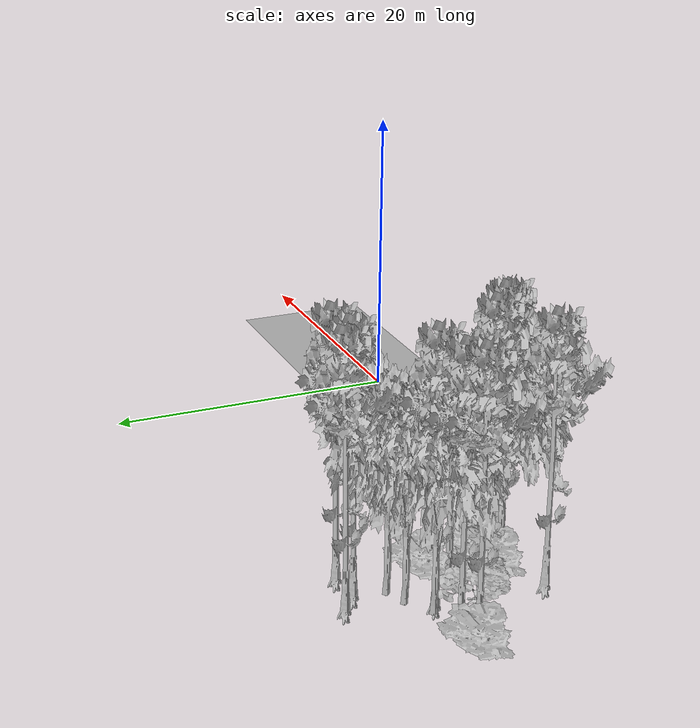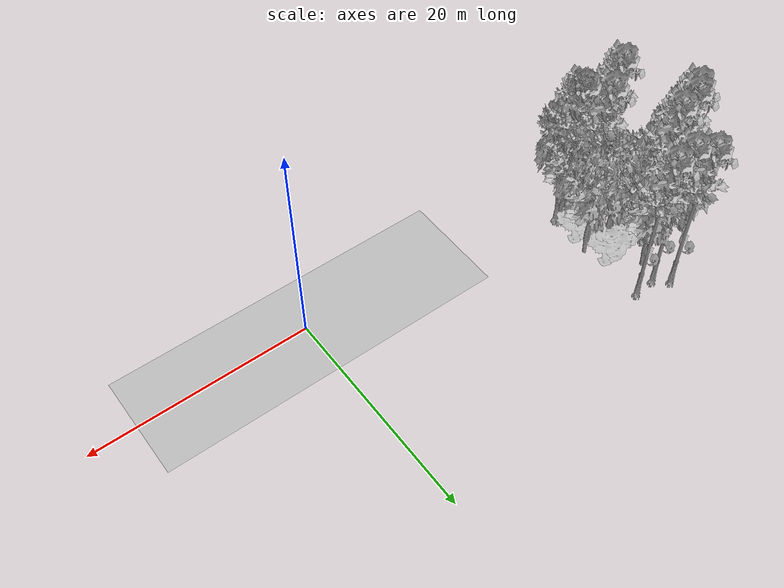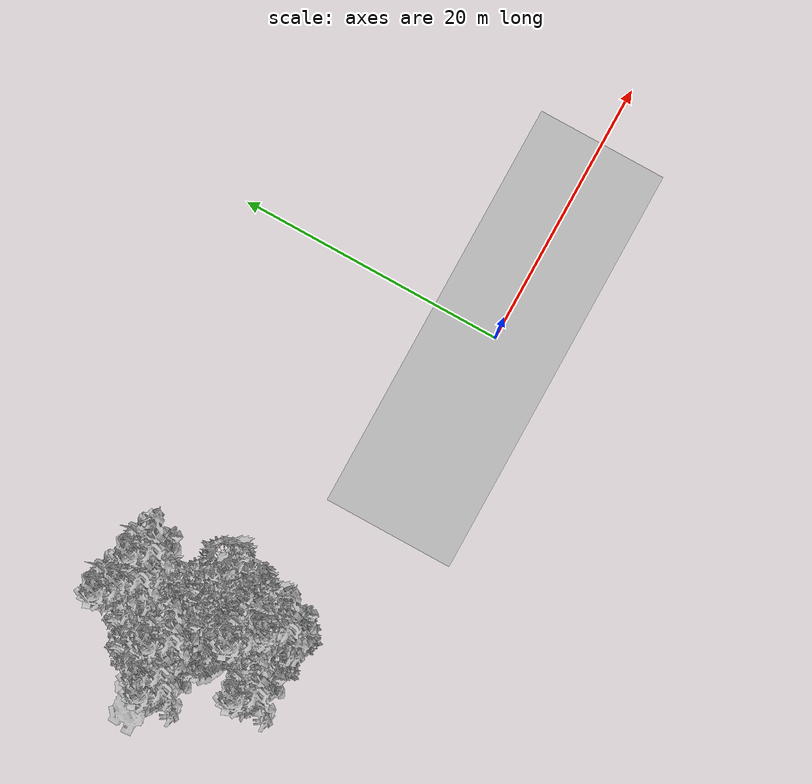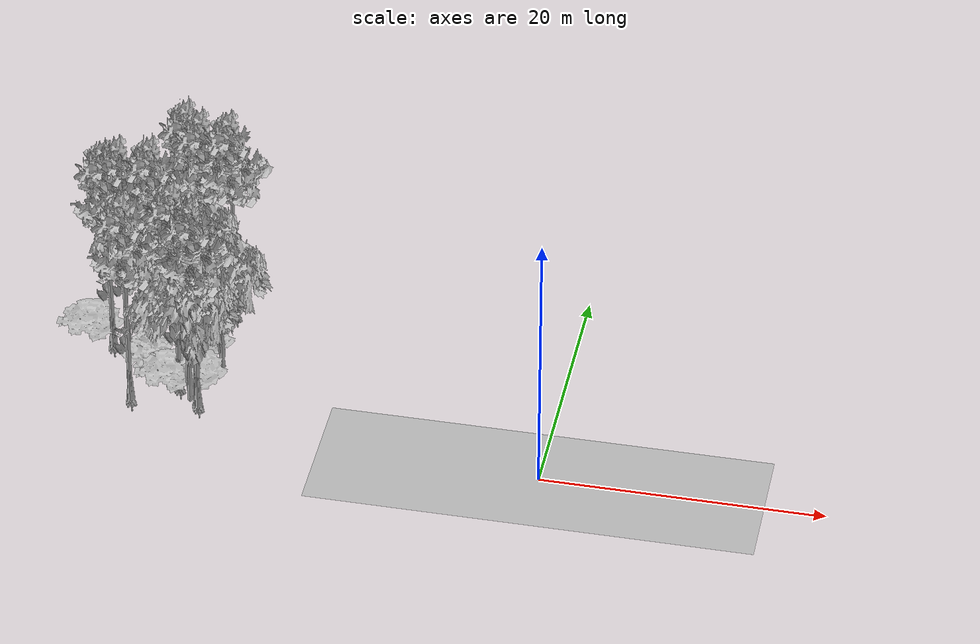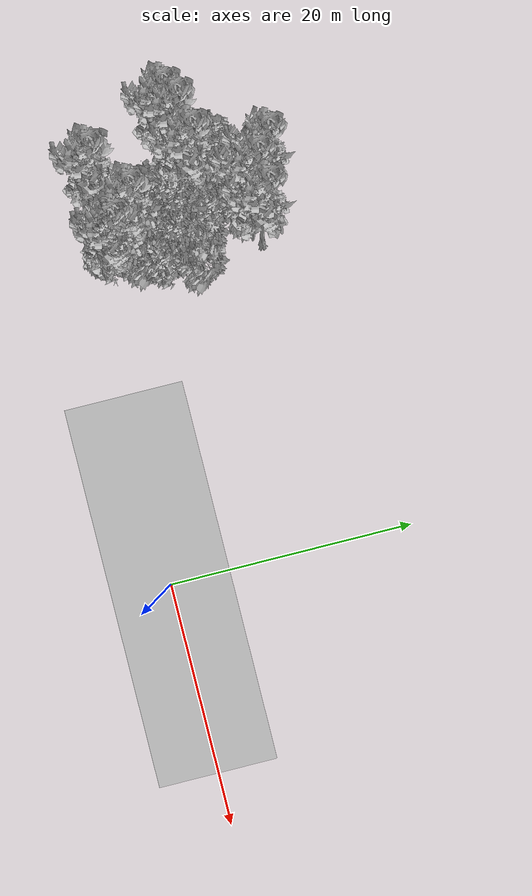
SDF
<sdf version="1.7">
 <world name="default">
  <model name="ground_plane">
   <static>1</static>
   <link name="link">
    <collision name="collision">
     <pose>-50 0 0 0 -0 0</pose>
     <geometry><plane><normal>0 0 1</normal><size>100 100</size></plane></geometry>
     <surface><contact><ode><min_depth>0.01</min_depth><max_vel>0</max_vel></ode></contact></surface>
    </collision>
    <visual name="grass">
     <cast_shadows>0</cast_shadows>
     <geometry>
      <mesh>
       <scale>0.5814285714285714 0.18142857142857144 0.1</scale>
       <uri>file://grass_plane/meshes/grass_plane.dae</uri>
      </mesh>
     </geometry>
    </visual>
   </link>
  </model>
  <model name="Tree 8">
   <static>1</static>
   <pose>-29.84656426832045 3.0639683747914432 0 1.57079 -0 0</pose>
   <link name="link">
    <collision name="collision">
     <geometry><mesh><scale>3.5 5 3.5</scale><uri>model://tree_9/meshes/tree_9.obj</uri></mesh></geometry>
    </collision>
    <visual name="visual">
     <geometry><mesh><scale>3.5 5 3.5</scale><uri>model://tree_9/meshes/tree_9.obj</uri></mesh></geometry>
    </visual>
   </link>
  </model>
  <model name="Tree 20">
   <static>1</static>
   <pose>-27.59546562882719 5.002111572936375 0 1.57079 -0 0</pose>
   <link name="link">
    <collision name="collision">
     <geometry><mesh><scale>3 2 3</scale><uri>model://tree_3/meshes/tree_3.obj</uri></mesh></geometry>
    </collision>
    <visual name="visual">
     <geometry><mesh><scale>3 2 3</scale><uri>model://tree_3/meshes/tree_3.obj</uri></mesh></geometry>
    </visual>
   </link>
  </model>
  <model name="Tree 23">
   <static>1</static>
   <pose>-24.41843978336981 7.7211221189544474 0 1.57079 -0 0</pose>
   <link name="link">
    <collision name="collision">
     <geometry><mesh><scale>3.5 5 3.5</scale><uri>model://tree_2/meshes/tree_2.obj</uri></mesh></geometry>
    </collision>
    <visual name="visual">
     <geometry><mesh><scale>3.5 5 3.5</scale><uri>model://tree_2/meshes/tree_2.obj</uri></mesh></geometry>
    </visual>
   </link>
  </model>
  <model name="Tree 33">
   <static>1</static>
   <pose>-25.675237100648353 5.041882957924631 0 1.57079 -0 0</pose>
   <link name="link">
    <collision name="collision">
     <geometry><mesh><scale>3.5 5 3.5</scale><uri>model://tree_2/meshes/tree_2.obj</uri></mesh></geometry>
    </collision>
    <visual name="visual">
     <geometry><mesh><scale>3.5 5 3.5</scale><uri>model://tree_2/meshes/tree_2.obj</uri></mesh></geometry>
    </visual>
   </link>
  </model>
  <model name="Tree 39">
   <static>1</static>
   <pose>-31.736005966464386 9.401606770844644 0 1.57079 -0 0</pose>
   <link name="link">
    <collision name="collision">
     <geometry><mesh><scale>3.5 5 3.5</scale><uri>model://tree_9/meshes/tree_9.obj</uri></mesh></geometry>
    </collision>
    <visual name="visual">
     <geometry><mesh><scale>3.5 5 3.5</scale><uri>model://tree_9/meshes/tree_9.obj</uri></mesh></geometry>
    </visual>
   </link>
  </model>
  <model name="Tree 112">
   <static>1</static>
   <pose>-30.262973727586818 10.247363208734729 0 1.57079 -0 0</pose>
   <link name="link">
    <collision name="collision">
     <geometry><mesh><scale>3.5 5 3.5</scale><uri>model://tree_2/meshes/tree_2.obj</uri></mesh></geometry>
    </collision>
    <visual name="visual">
     <geometry><mesh><scale>3.5 5 3.5</scale><uri>model://tree_2/meshes/tree_2.obj</uri></mesh></geometry>
    </visual>
   </link>
  </model>
  <model name="Tree 124">
   <static>1</static>
   <pose>-26.187645625802553 8.972207308378863 0 1.57079 -0 0</pose>
   <link name="link">
    <collision name="collision">
     <geometry><mesh><scale>3 2 3</scale><uri>model://tree_3/meshes/tree_3.obj</uri></mesh></geometry>
    </collision>
    <visual name="visual">
     <geometry><mesh><scale>3 2 3</scale><uri>model://tree_3/meshes/tree_3.obj</uri></mesh></geometry>
    </visual>
   </link>
  </model>
  <model name="Tree 139">
   <static>1</static>
   <pose>-29.864466258155577 7.493939993156232 0 1.57079 -0 0</pose>
   <link name="link">
    <collision name="collision">
     <geometry><mesh><scale>4 2.5 4</scale><uri>model://tree_1/meshes/tree_1.obj</uri></mesh></geometry>
    </collision>
    <visual name="visual">
     <geometry><mesh><scale>4 2.5 4</scale><uri>model://tree_1/meshes/tree_1.obj</uri></mesh></geometry>
    </visual>
   </link>
  </model>
  <model name="Tree 149">
   <static>1</static>
   <pose>-32.59278632444277 8.744411284109894 0 1.57079 -0 0</pose>
   <link name="link">
    <collision name="collision">
     <geometry><mesh><scale>3.5 5 3.5</scale><uri>model://tree_9/meshes/tree_9.obj</uri></mesh></geometry>
    </collision>
    <visual name="visual">
     <geometry><mesh><scale>3.5 5 3.5</scale><uri>model://tree_9/meshes/tree_9.obj</uri></mesh></geometry>
    </visual>
   </link>
  </model>
  <model name="Tree 150">
   <static>1</static>
   <pose>-24.995784744793134 3.2526082390005513 0 1.57079 -0 0</pose>
   <link name="link">
    <collision name="collision">
     <geometry><mesh><scale>3.5 5 3.5</scale><uri>model://tree_9/meshes/tree_9.obj</uri></mesh></geometry>
    </collision>
    <visual name="visual">
     <geometry><mesh><scale>3.5 5 3.5</scale><uri>model://tree_9/meshes/tree_9.obj</uri></mesh></geometry>
    </visual>
   </link>
  </model>
  <model name="Tree 165">
   <static>1</static>
   <pose>-27.437441718408827 11.829328012295889 0 1.57079 -0 0</pose>
   <link name="link">
    <collision name="collision">
     <geometry><mesh><scale>3.5 5 3.5</scale><uri>model://tree_2/meshes/tree_2.obj</uri></mesh></geometry>
    </collision>
    <visual name="visual">
     <geometry><mesh><scale>3.5 5 3.5</scale><uri>model://tree_2/meshes/tree_2.obj</uri></mesh></geometry>
    </visual>
   </link>
  </model>
  <model name="Tree 172">
   <static>1</static>
   <pose>-28.73297231665444 11.297764393645647 0 1.57079 -0 0</pose>
   <link name="link">
    <collision name="collision">
     <geometry><mesh><scale>3.5 5 3.5</scale><uri>model://tree_2/meshes/tree_2.obj</uri></mesh></geometry>
    </collision>
    <visual name="visual">
     <geometry><mesh><scale>3.5 5 3.5</scale><uri>model://tree_2/meshes/tree_2.obj</uri></mesh></geometry>
    </visual>
   </link>
  </model>
  <model name="Tree 173">
   <static>1</static>
   <pose>-29.485943040284404 9.842146640641058 0 1.57079 -0 0</pose>
   <link name="link">
    <collision name="collision">
     <geometry><mesh><scale>3.5 5 3.5</scale><uri>model://tree_9/meshes/tree_9.obj</uri></mesh></geometry>
    </collision>
    <visual name="visual">
     <geometry><mesh><scale>3.5 5 3.5</scale><uri>model://tree_9/meshes/tree_9.obj</uri></mesh></geometry>
    </visual>
   </link>
  </model>
  <model name="Tree 176">
   <static>1</static>
   <pose>-24.79401846950868 13.867609127829809 0 1.57079 -0 0</pose>
   <link name="link">
    <collision name="collision">
     <geometry><mesh><scale>3.5 5 3.5</scale><uri>model://tree_9/meshes/tree_9.obj</uri></mesh></geometry>
    </collision>
    <visual name="visual">
     <geometry><mesh><scale>3.5 5 3.5</scale><uri>model://tree_9/meshes/tree_9.obj</uri></mesh></geometry>
    </visual>
   </link>
  </model>
  <model name="Tree 241">
   <static>1</static>
   <pose>-28.08170825285322 14.672760579340657 0 1.57079 -0 0</pose>
   <link name="link">
    <collision name="collision">
     <geometry><mesh><scale>3.5 5 3.5</scale><uri>model://tree_9/meshes/tree_9.obj</uri></mesh></geometry>
    </collision>
    <visual name="visual">
     <geometry><mesh><scale>3.5 5 3.5</scale><uri>model://tree_9/meshes/tree_9.obj</uri></mesh></geometry>
    </visual>
   </link>
  </model>
  <model name="Tree 268">
   <static>1</static>
   <pose>-26.377779836818114 8.293545707899757 0 1.57079 -0 0</pose>
   <link name="link">
    <collision name="collision">
     <geometry><mesh><scale>3.5 5 3.5</scale><uri>model://tree_2/meshes/tree_2.obj</uri></mesh></geometry>
    </collision>
    <visual name="visual">
     <geometry><mesh><scale>3.5 5 3.5</scale><uri>model://tree_2/meshes/tree_2.obj</uri></mesh></geometry>
    </visual>
   </link>
  </model>
  <model name="Tree 270">
   <static>1</static>
   <pose>-25.783463543099028 3.735809799680492 0 1.57079 -0 0</pose>
   <link name="link">
    <collision name="collision">
     <geometry><mesh><scale>3.5 5 3.5</scale><uri>model://tree_2/meshes/tree_2.obj</uri></mesh></geometry>
    </collision>
    <visual name="visual">
     <geometry><mesh><scale>3.5 5 3.5</scale><uri>model://tree_2/meshes/tree_2.obj</uri></mesh></geometry>
    </visual>
   </link>
  </model>
  <model name="Tree 460">
   <static>1</static>
   <pose>-34.48905585344988 9.578766091717071 0 1.57079 -0 0</pose>
   <link name="link">
    <collision name="collision">
     <geometry><mesh><scale>3 2 3</scale><uri>model://tree_3/meshes/tree_3.obj</uri></mesh></geometry>
    </collision>
    <visual name="visual">
     <geometry><mesh><scale>3 2 3</scale><uri>model://tree_3/meshes/tree_3.obj</uri></mesh></geometry>
    </visual>
   </link>
  </model>
  <model name="Tree 462">
   <static>1</static>
   <pose>-25.86884171106573 5.4359740219573816 0 1.57079 -0 0</pose>
   <link name="link">
    <collision name="collision">
     <geometry><mesh><scale>3 2 3</scale><uri>model://tree_3/meshes/tree_3.obj</uri></mesh></geometry>
    </collision>
    <visual name="visual">
     <geometry><mesh><scale>3 2 3</scale><uri>model://tree_3/meshes/tree_3.obj</uri></mesh></geometry>
    </visual>
   </link>
  </model>
  <model name="Tree 470">
   <static>1</static>
   <pose>-25.15570228941602 3.6095949419954856 0 1.57079 -0 0</pose>
   <link name="link">
    <collision name="collision">
     <geometry><mesh><scale>3.5 5 3.5</scale><uri>model://tree_9/meshes/tree_9.obj</uri></mesh></geometry>
    </collision>
    <visual name="visual">
     <geometry><mesh><scale>3.5 5 3.5</scale><uri>model://tree_9/meshes/tree_9.obj</uri></mesh></geometry>
    </visual>
   </link>
  </model>
  <model name="Tree 497">
   <static>1</static>
   <pose>-26.842598115747503 13.678798877074716 0 1.57079 -0 0</pose>
   <link name="link">
    <collision name="collision">
     <geometry><mesh><scale>3.5 5 3.5</scale><uri>model://tree_9/meshes/tree_9.obj</uri></mesh></geometry>
    </collision>
    <visual name="visual">
     <geometry><mesh><scale>3.5 5 3.5</scale><uri>model://tree_9/meshes/tree_9.obj</uri></mesh></geometry>
    </visual>
   </link>
  </model>
  <model name="Tree 500">
   <static>1</static>
   <pose>-26.782143795154035 5.025183948729357 0 1.57079 -0 0</pose>
   <link name="link">
    <collision name="collision">
     <geometry><mesh><scale>3.5 5 3.5</scale><uri>model://tree_9/meshes/tree_9.obj</uri></mesh></geometry>
    </collision>
    <visual name="visual">
     <geometry><mesh><scale>3.5 5 3.5</scale><uri>model://tree_9/meshes/tree_9.obj</uri></mesh></geometry>
    </visual>
   </link>
  </model>
  <model name="Tree 522">
   <static>1</static>
   <pose>-27.21656744395186 7.8502251501563585 0 1.57079 -0 0</pose>
   <link name="link">
    <collision name="collision">
     <geometry><mesh><scale>3.5 5 3.5</scale><uri>model://tree_2/meshes/tree_2.obj</uri></mesh></geometry>
    </collision>
    <visual name="visual">
     <geometry><mesh><scale>3.5 5 3.5</scale><uri>model://tree_2/meshes/tree_2.obj</uri></mesh></geometry>
    </visual>
   </link>
  </model>
 </world>
</sdf>
